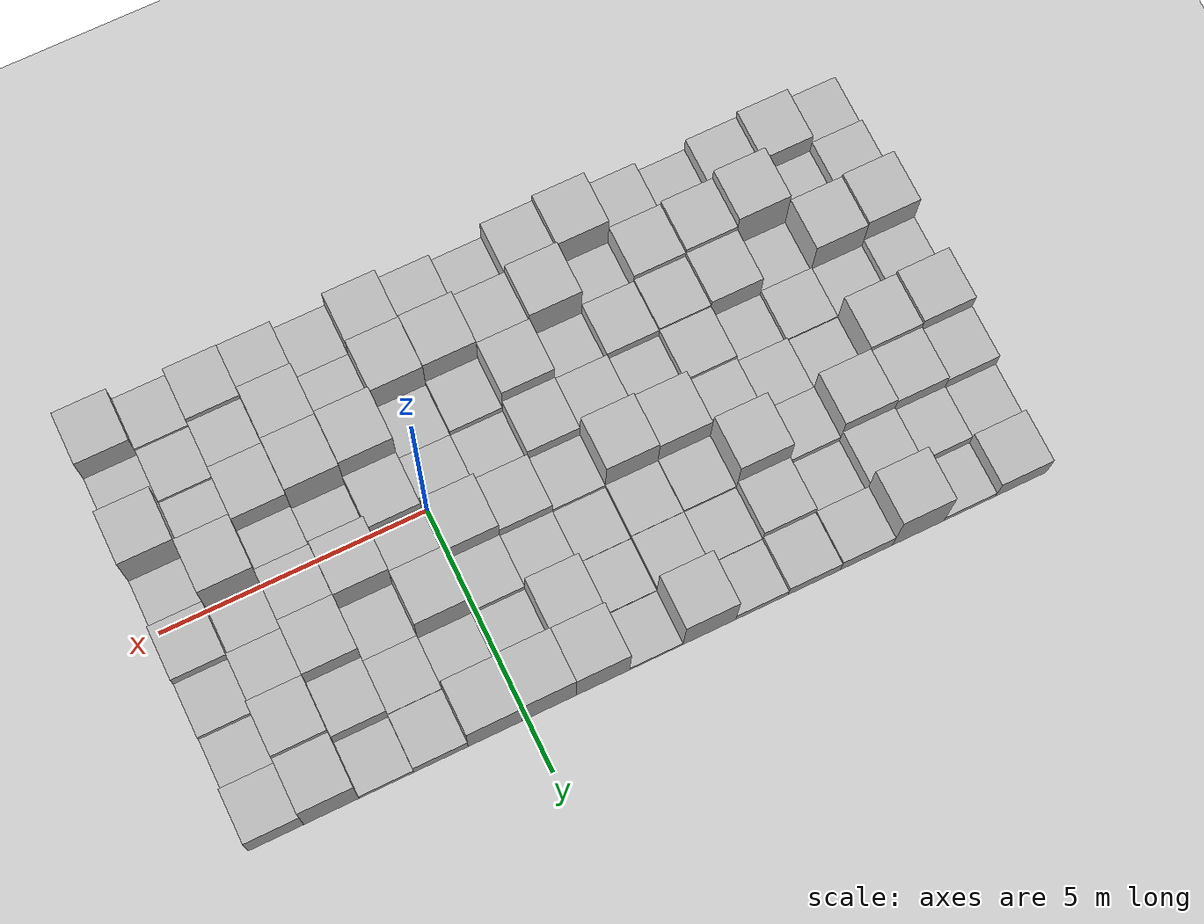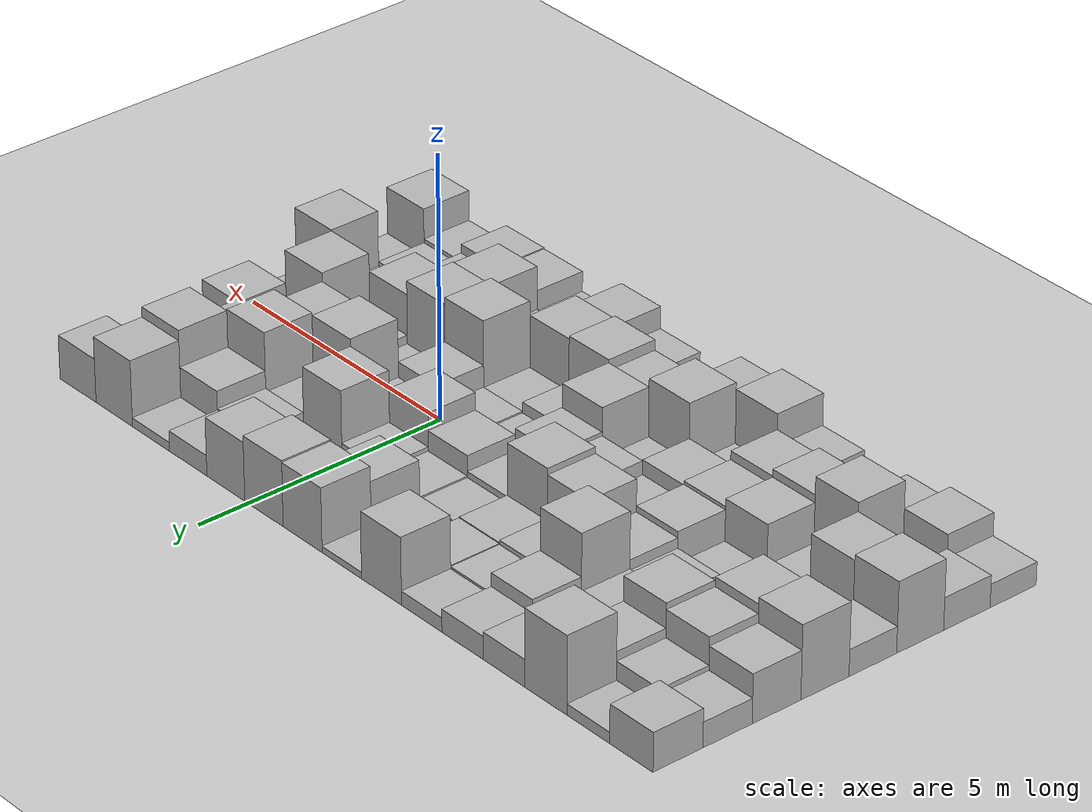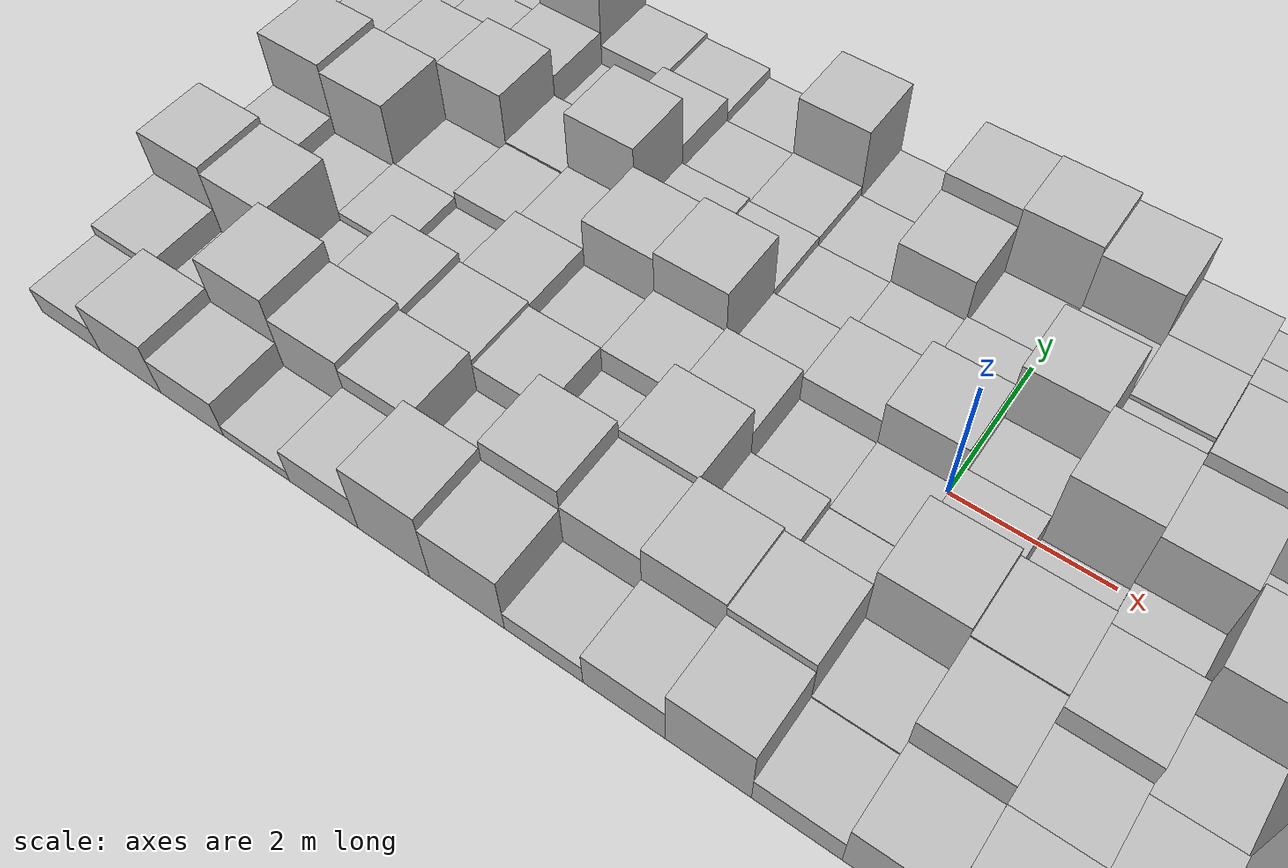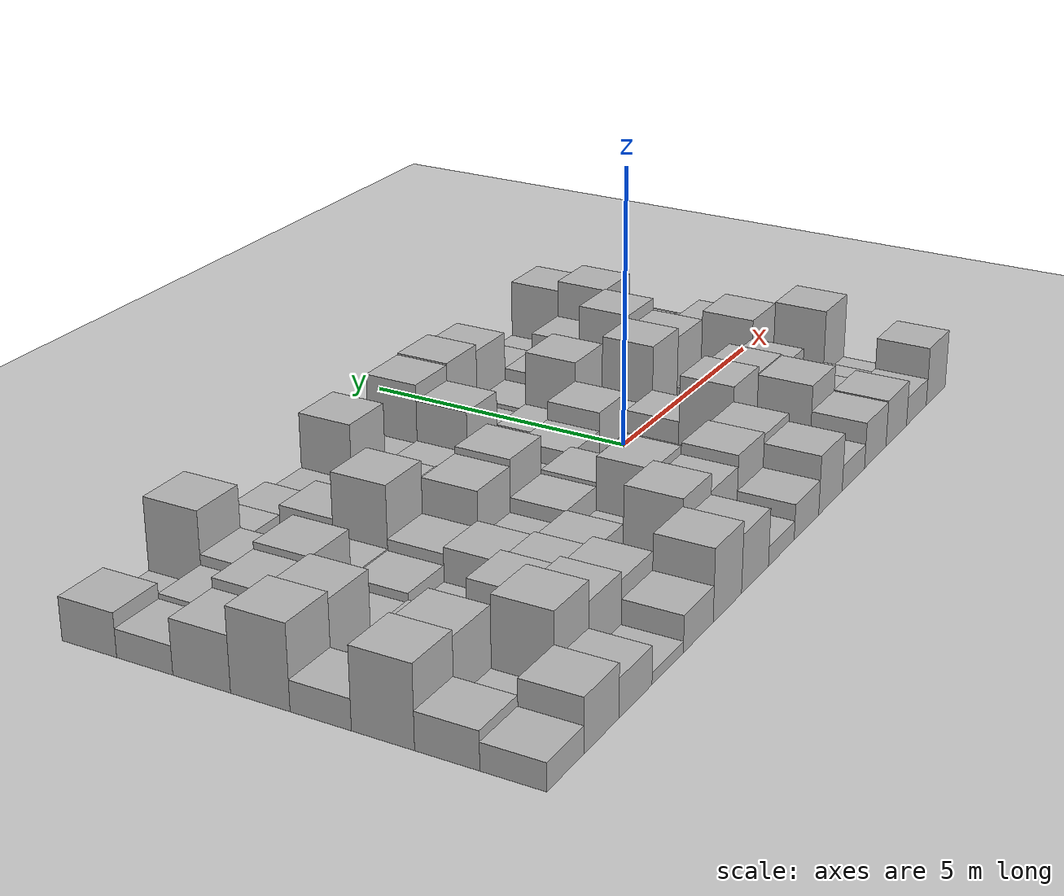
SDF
<?xml version="1.0" ?>
<sdf version="1.6">
    <world name="default">
        <gravity>0 0 -9.81</gravity>
        <include>
            <uri>model://Ground_plane</uri>
        </include>
        <include>
            <uri>model://sun</uri>
        </include>
        <include>
            <uri>model://Generated_terrain</uri>
            <name>Terrain</name>
            <pose>4.6 0 0 0 0 -1.57</pose>
        </include>
    </world>
</sdf>
